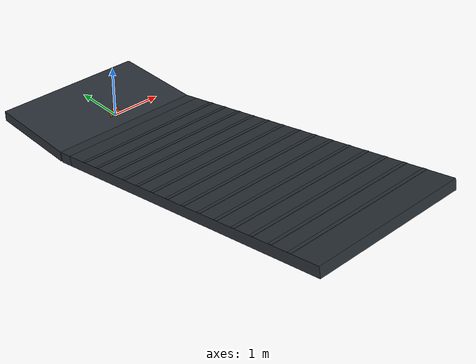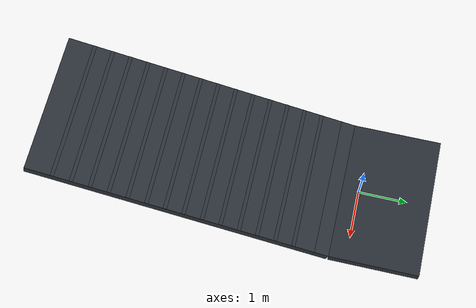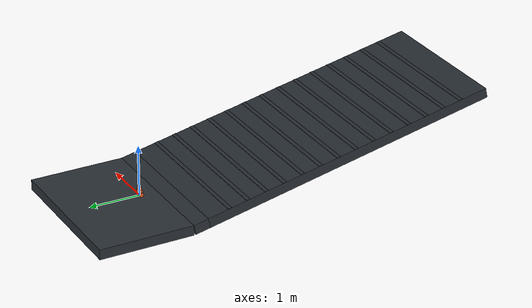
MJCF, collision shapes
<mujoco model="Stage4B rtrain_051_p12p0">
  <compiler angle="radian" meshdir="../../../../assets/upstream_local" />
  <option timestep="0.001" integrator="implicitfast" gravity="0 0 -9.81" />
  <statistic center="0 0 0.05" extent="0.28" />
  <default>
    <default class="visual">
      <geom contype="0" conaffinity="0" group="2" />
    </default>
    <default class="collision">
      <geom group="3" rgba="0.85 0.35 0.12 0.25" solref="0.005 1" solimp="0.9 0.95 0.001" />
    </default>
  </default>
  <asset>
    <texture name="ground_tex" type="2d" builtin="checker" rgb1="0.22 0.25 0.28" rgb2="0.12 0.14 0.16" width="256" height="256" />
    <material name="ground_mat" texture="ground_tex" texrepeat="4 4" reflectance="0.15" />
    <mesh name="main_frame_mesh" file="main_frame.stl" scale="0.001 0.001 0.001" />
    <mesh name="wheel_base_mesh" file="wheel_base.stl" scale="0.001 0.001 0.001" />
    <mesh name="cover_mesh" file="cover.stl" scale="0.001 0.001 0.001" />
    <mesh name="motor_left_mesh" file="motor_left.stl" scale="0.001 0.001 0.001" />
    <mesh name="motor_right_mesh" file="motor_right.stl" scale="0.001 0.001 0.001" />
    <mesh name="mc33926_mesh" file="mc33926.stl" scale="0.001 0.001 0.001" />
    <mesh name="wheel_mesh" file="wheel.stl" scale="0.001 0.001 0.001" />
    <mesh name="adapter_left_mesh" file="adapter_left.stl" scale="0.001 0.001 0.001" />
    <mesh name="adapter_right_mesh" file="adapter_right.stl" scale="0.001 0.001 0.001" />
  </asset>
  <worldbody>
    <light pos="0 -0.5 0.8" dir="0 0.6 -1" diffuse="0.8 0.8 0.8" />
    <geom name="terrain_flat" type="box" pos="0 0.575 -0.1" size="1.5 0.925 0.1" material="ground_mat" friction="0.43089813 0.005 0.0001" condim="3" />
    <geom name="terrain_transition" type="box" pos="0 -0.517513309192 -0.0666280064507" euler="-0.209439510239 0 0" size="1.5 0.15 0.1" material="ground_mat" friction="0.43089813 0.005 0.0001" condim="3" />
    <geom name="terrain_constant_grade" type="box" pos="0 -3.5986782515 0.588293819625" euler="-0.209439510239 0 0" size="1.5 3 0.1" material="ground_mat" friction="0.43089813 0.005 0.0001" condim="3" />
    <geom name="terrain_rough_00" type="box" pos="0 -1.08316517342 0.158029808488" euler="-0.209439510239 0 0" size="1.5 0.0369775047462 0.00214286716372" material="ground_mat" friction="0.43089813 0.005 0.0001" condim="3" />
    <geom name="terrain_rough_01" type="box" pos="0 -1.45859071659 0.237828971109" euler="-0.209439510239 0 0" size="1.5 0.0369775047462 0.00214286716372" material="ground_mat" friction="0.43089813 0.005 0.0001" condim="3" />
    <geom name="terrain_rough_02" type="box" pos="0 -1.83401625976 0.317628133729" euler="-0.209439510239 0 0" size="1.5 0.0369775047462 0.00214286716372" material="ground_mat" friction="0.43089813 0.005 0.0001" condim="3" />
    <geom name="terrain_rough_03" type="box" pos="0 -2.20944180294 0.397427296349" euler="-0.209439510239 0 0" size="1.5 0.0369775047462 0.00214286716372" material="ground_mat" friction="0.43089813 0.005 0.0001" condim="3" />
    <geom name="terrain_rough_04" type="box" pos="0 -2.58486734611 0.47722645897" euler="-0.209439510239 0 0" size="1.5 0.0369775047462 0.00214286716372" material="ground_mat" friction="0.43089813 0.005 0.0001" condim="3" />
    <geom name="terrain_rough_05" type="box" pos="0 -2.96029288929 0.55702562159" euler="-0.209439510239 0 0" size="1.5 0.0369775047462 0.00214286716372" material="ground_mat" friction="0.43089813 0.005 0.0001" condim="3" />
    <geom name="terrain_rough_06" type="box" pos="0 -3.33571843246 0.63682478421" euler="-0.209439510239 0 0" size="1.5 0.0369775047462 0.00214286716372" material="ground_mat" friction="0.43089813 0.005 0.0001" condim="3" />
    <geom name="terrain_rough_07" type="box" pos="0 -3.71114397564 0.716623946831" euler="-0.209439510239 0 0" size="1.5 0.0369775047462 0.00214286716372" material="ground_mat" friction="0.43089813 0.005 0.0001" condim="3" />
    <geom name="terrain_rough_08" type="box" pos="0 -4.08656951881 0.796423109451" euler="-0.209439510239 0 0" size="1.5 0.0369775047462 0.00214286716372" material="ground_mat" friction="0.43089813 0.005 0.0001" condim="3" />
    <geom name="terrain_rough_09" type="box" pos="0 -4.46199506199 0.876222272071" euler="-0.209439510239 0 0" size="1.5 0.0369775047462 0.00214286716372" material="ground_mat" friction="0.43089813 0.005 0.0001" condim="3" />
    <geom name="terrain_rough_10" type="box" pos="0 -4.83742060516 0.956021434692" euler="-0.209439510239 0 0" size="1.5 0.0369775047462 0.00214286716372" material="ground_mat" friction="0.43089813 0.005 0.0001" condim="3" />
    <geom name="terrain_rough_11" type="box" pos="0 -5.21284614834 1.03582059731" euler="-0.209439510239 0 0" size="1.5 0.0369775047462 0.00214286716372" material="ground_mat" friction="0.43089813 0.005 0.0001" condim="3" />
    <geom name="terrain_rough_12" type="box" pos="0 -5.58827169151 1.11561975993" euler="-0.209439510239 0 0" size="1.5 0.0369775047462 0.00214286716372" material="ground_mat" friction="0.43089813 0.005 0.0001" condim="3" />
    <geom name="terrain_rough_13" type="box" pos="0 -5.96369723469 1.19541892255" euler="-0.209439510239 0 0" size="1.5 0.0369775047462 0.00214286716372" material="ground_mat" friction="0.43089813 0.005 0.0001" condim="3" />
    <body name="chassis" pos="0 0 0.043">
      <freejoint name="root" />
      <inertial pos="0.0001592717873 -0.001394466535 0.03368627387" mass="0.8173706489" fullinertia="0.0009508052638 0.001636345835 0.0009938057434 -1.163464906e-07 -4.840496598e-06 3.454944565e-05" />
      <geom name="main_frame_visual" class="visual" type="mesh" mesh="main_frame_mesh" rgba="0.12 0.42 0.72 1" />
      <geom name="wheel_base_visual" class="visual" type="mesh" mesh="wheel_base_mesh" rgba="0.95 0.50 0.10 1" />
      <geom name="cover_visual" class="visual" type="mesh" mesh="cover_mesh" rgba="0.18 0.72 0.32 0.72" />
      <geom name="motor_left_visual" class="visual" type="mesh" mesh="motor_left_mesh" rgba="0.45 0.47 0.50 1" />
      <geom name="motor_right_visual" class="visual" type="mesh" mesh="motor_right_mesh" rgba="0.45 0.47 0.50 1" />
      <geom name="mc33926_visual" class="visual" type="mesh" mesh="mc33926_mesh" rgba="0.08 0.36 0.18 1" />
      <geom name="battery_1_visual" class="visual" type="box" pos="0 -0.012 0.038" size="0.035 0.007 0.025" rgba="0.15 0.25 0.75 1" />
      <geom name="battery_2_visual" class="visual" type="box" pos="0 0.012 0.038" size="0.035 0.007 0.025" rgba="0.15 0.25 0.75 1" />
      <geom name="electronics_lump_visual" class="visual" type="box" pos="0 -0.024 0.067" size="0.035 0.006 0.0425" rgba="0.10 0.42 0.20 0.65" />
      <geom name="wheel_base_collision" class="collision" type="box" pos="0 0.0005 0.0042" size="0.074 0.0201 0.0198" />
      <geom name="lower_chassis_collision" class="collision" type="box" pos="0.001 -0.0015 0.038" size="0.0595 0.0325 0.038" />
      <geom name="upper_chassis_collision" class="collision" type="capsule" fromto="-0.024 -0.0015 0.096 0.026 -0.0015 0.096" size="0.033" />
      <site name="imu_site" type="box" pos="0 0 0.020" quat="1 0 0 0" size="0.004 0.003 0.001" rgba="1 0.15 0.05 1" />
      <body name="left_wheel" pos="-0.0885 0 0">
        <joint name="left_wheel_hinge" type="hinge" axis="1 0 0" damping="0.002" frictionloss="0.002" />
        <inertial pos="0.001407549168 -2.310217342e-08 4.024972882e-05" mass="0.1051" fullinertia="8.559060347e-05 4.760138372e-05 4.763051958e-05 2.677568832e-11 -3.525425309e-08 -1.463149106e-11" />
        <geom name="left_wheel_visual" class="visual" type="mesh" mesh="wheel_mesh" rgba="0.04 0.05 0.06 1" />
        <geom name="left_adapter_visual" class="visual" type="mesh" mesh="adapter_left_mesh" rgba="0.12 0.48 0.82 1" />
        <geom name="left_wheel_collision" class="collision" type="cylinder" size="0.042 0.012" quat="0.7071067812 0 0.7071067812 0" friction="0.43089813 0.005 0.0001" />
      </body>
      <body name="right_wheel" pos="0.0885 0 0">
        <joint name="right_wheel_hinge" type="hinge" axis="1 0 0" damping="0.002" frictionloss="0.002" />
        <inertial pos="-0.001407437868 -2.310217342e-08 -4.019113045e-05" mass="0.1051" fullinertia="8.559060397e-05 4.760141714e-05 4.763055251e-05 -2.601653908e-11 -3.526339188e-08 1.57007511e-11" />
        <geom name="right_wheel_visual" class="visual" type="mesh" mesh="wheel_mesh" rgba="0.04 0.05 0.06 1" />
        <geom name="right_adapter_visual" class="visual" type="mesh" mesh="adapter_right_mesh" rgba="0.12 0.48 0.82 1" />
        <geom name="right_wheel_collision" class="collision" type="cylinder" size="0.042 0.012" quat="0.7071067812 0 0.7071067812 0" friction="0.43089813 0.005 0.0001" />
      </body>
    </body>
  </worldbody>
  <actuator>
    <motor name="left_wheel_torque" joint="left_wheel_hinge" gear="1" ctrllimited="true" ctrlrange="-0.63 0.63" forcelimited="true" forcerange="-0.63 0.63" />
    <motor name="right_wheel_torque" joint="right_wheel_hinge" gear="1" ctrllimited="true" ctrlrange="-0.63 0.63" forcelimited="true" forcerange="-0.63 0.63" />
  </actuator>
  <sensor>
    <accelerometer name="imu_accelerometer" site="imu_site" />
    <gyro name="imu_gyro" site="imu_site" />
    <jointpos name="left_wheel_angle" joint="left_wheel_hinge" />
    <jointpos name="right_wheel_angle" joint="right_wheel_hinge" />
  </sensor>
  <keyframe>
    <key name="upright" qpos="0 0 0.043 1 0 0 0 0 0" />
  </keyframe>
</mujoco>
